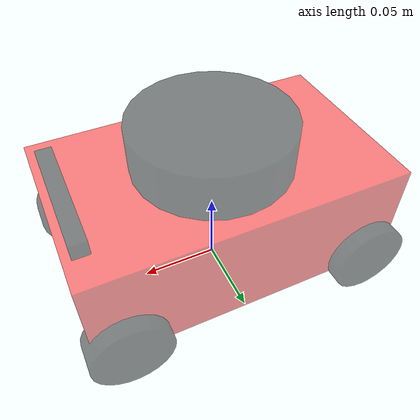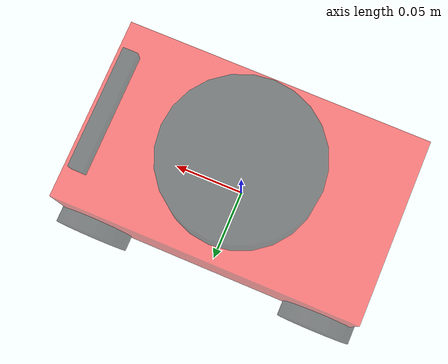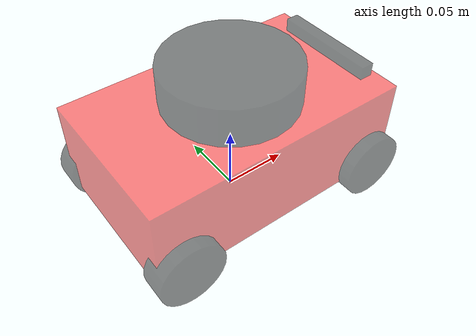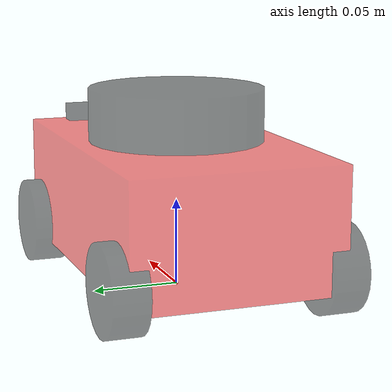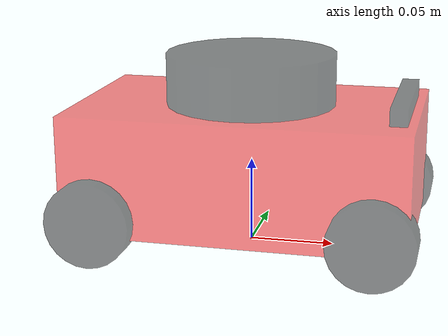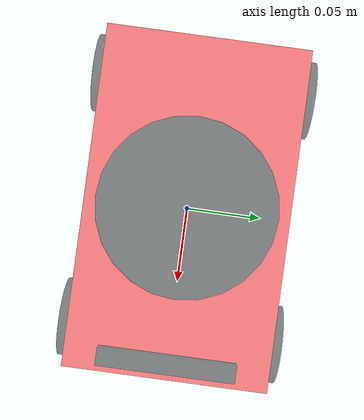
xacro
<!-- 小车集成 -->
<robot xmlns:xacro="http://www.ros.org/wiki/xacro" name="car">

    <!-- 包含文件 -->
    <xacro:include filename="car_base.urdf.xacro" />
    <xacro:include filename="car_carmer.urdf.xacro" />
    <xacro:include filename="car_laser.urdf.xacro" />

</robot>

<!-- 调用 -->
<!-- ros2 launch py06_urdf display.launch.py model:="$(ros2 pkg prefix  两个横杠share py06_urdf)/urdf/xacro/car.urdf.xacro" -->

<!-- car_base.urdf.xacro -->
<!-- 底盘实现 -->
<robot xmlns:xacro="http://www.ros.org/wiki/xacro">
<!-- 底盘实现 -->

    <!-- 声明变量 -->
    <xacro:property name="PI" value="3.1415927"/>
    <xacro:property name="car_length" value="0.2"/>
    <xacro:property name="car_width" value="0.12"/>
    <xacro:property name="car_height" value="0.07"/>
    <!-- 轮胎尺寸 -->
    <xacro:property name="wheel_radius" value="0.025"/>
    <xacro:property name="wheel_width" value="0.02"/>
    <!-- 离地距离 -->
    <xacro:property name="clearance" value="0.015"/>

    <!-- 封装轮胎关节平移 -->
    <xacro:property name="wheel_absx" value="0.08"/>
    <xacro:property name="wheel_absy" value="${car_width/2}"/>
    <xacro:property name="wheel_absz" value="${-(car_height/2 + clearance - wheel_radius)}"/>

    <!-- 颜色 -->
    <material name="black">
        <color rgba="0.0 0.0 0.0 0.5"/>
    </material>
    <material name="red">
        <color rgba="1.0 0.0 0.0 0.5"/>
    </material>

    <!-- 设置base_footprint -->
    <link name="base_footprint_link">
        <visual>
            <geometry>
                <sphere radius="0.001"/>
            </geometry>
        </visual>
    </link>

    <!-- 设置底盘 base_link -->
    <link name="base_link">
        <visual>
            <geometry>
                <box size="${car_length} ${car_width} ${car_height}"/>
            </geometry>
            <material name="red"/>
        </visual>
    </link>

    <!-- 使用join关联 -->
    <!-- base_link与base_footprint_link的关节 -->
    <joint name="base_link2footprint" type="fixed">
    <!-- 连接的两个link 父标签为footprint_link 子标签为base_link 固定类型 -->
        <parent link="base_footprint_link"/>
        <child link="base_link"/>
    <!-- 关节的原点位置 平移量旋转度   上移  0.07除以2+0.15 二分之一车体高度加离地间距 -->
        <origin xyz="0.0 0.0 ${car_height/2 + clearance}" rpy="0 0 0"/>
    </joint>
    <!-- 定义车轮相关的宏 -->
    <!-- 封装可被复用的代码 变的数据以参数形式传入 变的数据是名称 -->
    <!-- link中 name -->
    <!-- joint 中 name child_link origin(x，y)坐标 前 左 为1  后 右为0 -->
    <xacro:macro name="wheel_func" params="link_name front_flag left_flag">
        <link name="${link_name}">
        <visual>
            <geometry>
                <cylinder radius="${wheel_radius}" length="${wheel_width}"/>
            </geometry>
            <material name="black">
                <color rgba="0 0 0 0.5"/>
            </material>
            <!-- 设置旋转 -->
            <origin rpy="${PI/2} 0 0"/>
        </visual>
    </link>

    <joint name="${link_name}2base_link" type="continuous">
        <parent link="base_link"/>
        <child link="${link_name}"/>
        <origin xyz="${wheel_absx*front_flag} ${wheel_absy*left_flag} ${wheel_absz}" rpy="0 0 0"/>
        <!-- 关节的旋转轴 -->
        <axis xyz="0 1 0"/>
    </joint>
    </xacro:macro>

    <!-- 调用宏生成多个车轮 -->
    <xacro:wheel_func link_name="left_front_wheel_link" front_flag="1" left_flag="1"/>
    <xacro:wheel_func link_name="right_front_wheel_link" front_flag="1" left_flag="-1"/>
    <xacro:wheel_func link_name="left_hou_wheel_link" front_flag="-1" left_flag="1"/>
    <xacro:wheel_func link_name="right_hou_wheel_link" front_flag="-1" left_flag="-1"/>

</robot>

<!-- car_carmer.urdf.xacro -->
<!-- 摄像头实现 -->
<robot xmlns:xacro="http://www.ros.org/wiki/xacro">
    <!-- #定义属性 -->
    <xacro:property name="camera_x" value="0.01"/>
    <xacro:property name="camera_y" value="0.08"/>
    <xacro:property name="camera_z" value="0.01"/>

    <!-- 偏移量 -->
    <xacro:property name="delet_x" value="${car_length/2-0.01}"/>
    <xacro:property name="delet_y" value="0.0"/>
    <xacro:property name="delet_z" value="${car_height/2+camera_z/2}"/>

    <!-- 创建link -->
     <!-- 设置base_footprint -->
    <link name="carmar_link">
        <visual>
            <geometry>
                <box size="${camera_x} ${camera_y} ${camera_z}"/>
            </geometry>
            <material name="black"/>
        </visual>
    </link>

    <!-- 设置关节 -->
    <joint name="carmar_link2base_link" type="fixed">
        <parent link="base_link"/>
        <child link="carmar_link"/>

        <origin xyz="${delet_x} ${delet_y} ${delet_z}" rpy="0 0 0"/>
    </joint>
</robot>

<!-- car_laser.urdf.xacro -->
<!-- 雷达实现 -->
<robot xmlns:xacro="http://www.ros.org/wiki/xacro">
    <!-- 定于变量 -->
    <xacro:property name="laser_r" value="0.05"/>
    <xacro:property name="laser_h" value="0.03"/>

    <!-- 偏移量 -->
    <xacro:property name="delet_x1" value="0.0"/>
    <xacro:property name="delet_y1" value="0.0"/>
    <xacro:property name="delet_z1" value="${car_height/2+laser_h/2}"/>

    <!-- 定义link -->
    <link name="laser_link">
        <visual>
            <geometry>
                <cylinder radius="${laser_r}" length="${laser_h}"/>
            </geometry>
            <material name="black"/>
        </visual>
    </link>

    <!-- 定义关节 -->
    <joint name="laser_link2base_link" type="fixed">
        <parent link="base_link"/>
        <child link="laser_link"/>

        <origin xyz="${delet_x1} ${delet_y1} ${delet_z1}" rpy="0 0 0"/>
    </joint>
</robot>
